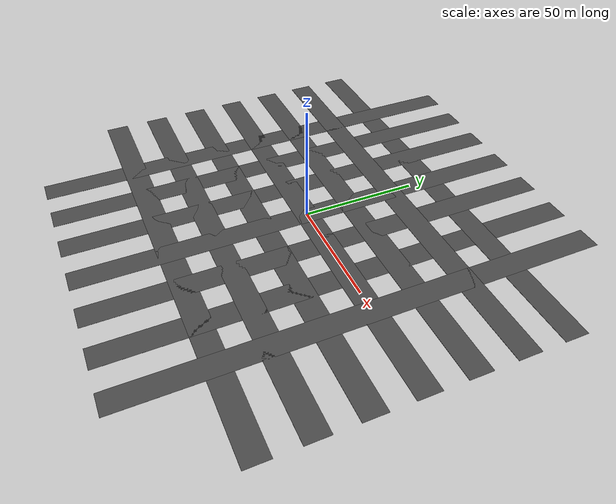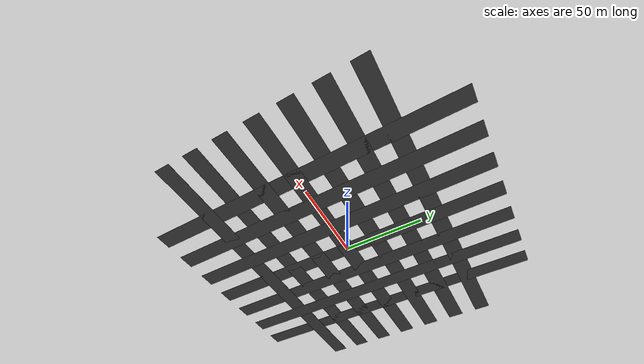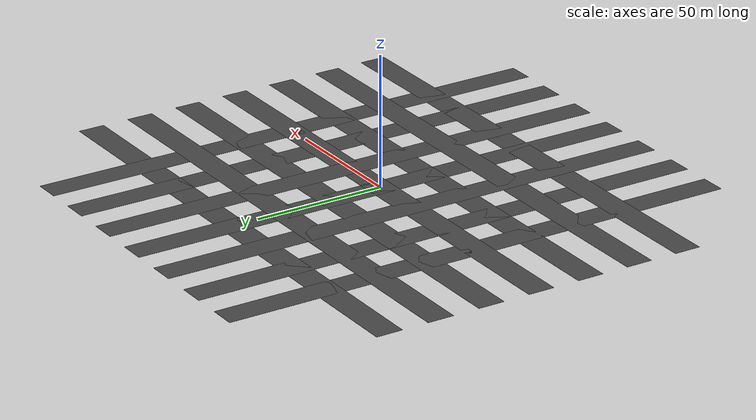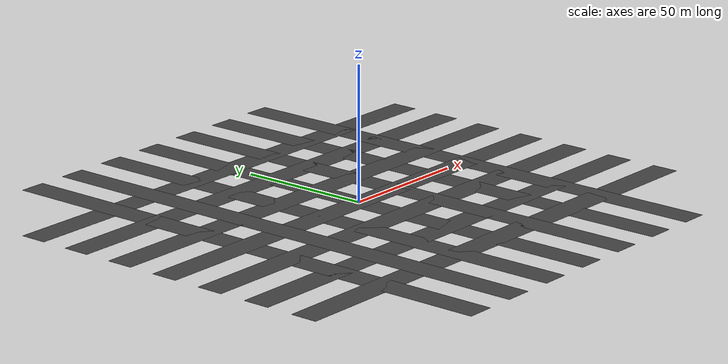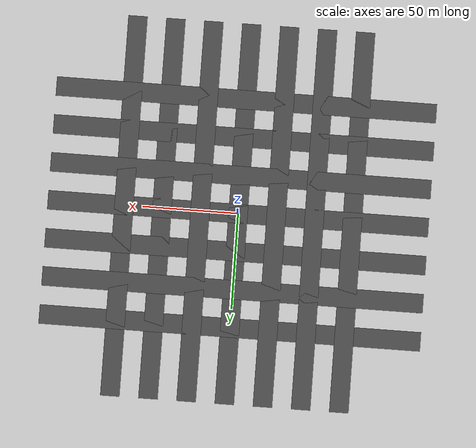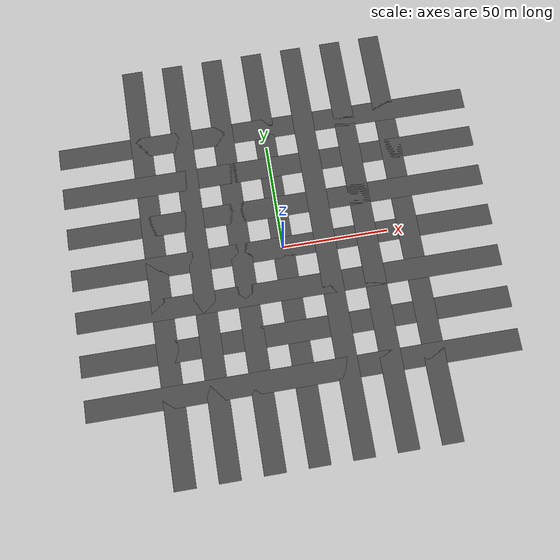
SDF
<?xml version="1.0" ?>
<sdf version="1.5">
  <model name="asphalt_plane">
    <static>true</static>
    <link name="r0">
      <pose frame=''>0 0 0 0 -0 0</pose>
      <collision name="collision">
        <geometry>
          <box>
            <size>10 200 .1</size>
          </box>
        </geometry>
      </collision>
      <visual name="visual">
        <cast_shadows>false</cast_shadows>
        <geometry>
          <box>
            <size>10 200 .1</size>
          </box>
        </geometry>
        <material>
          <script>
            <uri>model://asphalt_plane/materials/scripts</uri>
            <uri>model://asphalt_plane/materials/textures</uri>
            <name>vrc/asphalt</name>
          </script>
        </material>
      </visual>
    </link>
    <link name="r1">
      <pose frame=''>20 0 0 0 -0 0</pose>
      <collision name="collision">
        <geometry>
          <box>
            <size>10 200 .1</size>
          </box>
        </geometry>
      </collision>
      <visual name="visual">
        <cast_shadows>false</cast_shadows>
        <geometry>
          <box>
            <size>10 200 .1</size>
          </box>
        </geometry>
        <material>
          <script>
            <uri>model://asphalt_plane/materials/scripts</uri>
            <uri>model://asphalt_plane/materials/textures</uri>
            <name>vrc/asphalt</name>
          </script>
        </material>
      </visual>
    </link>
    <link name="r2">
      <pose frame=''>40 0 0 0 -0 0</pose>
      <collision name="collision">
        <geometry>
          <box>
            <size>10 200 .1</size>
          </box>
        </geometry>
      </collision>
      <visual name="visual">
        <cast_shadows>false</cast_shadows>
        <geometry>
          <box>
            <size>10 200 .1</size>
          </box>
        </geometry>
        <material>
          <script>
            <uri>model://asphalt_plane/materials/scripts</uri>
            <uri>model://asphalt_plane/materials/textures</uri>
            <name>vrc/asphalt</name>
          </script>
        </material>
      </visual>
    </link>
    <link name="r3">
      <pose frame=''>60 0 0 0 -0 0</pose>
      <collision name="collision">
        <geometry>
          <box>
            <size>10 200 .1</size>
          </box>
        </geometry>
      </collision>
      <visual name="visual">
        <cast_shadows>false</cast_shadows>
        <geometry>
          <box>
            <size>10 200 .1</size>
          </box>
        </geometry>
        <material>
          <script>
            <uri>model://asphalt_plane/materials/scripts</uri>
            <uri>model://asphalt_plane/materials/textures</uri>
            <name>vrc/asphalt</name>
          </script>
        </material>
      </visual>
    </link>
    <link name="r-1">
      <pose frame=''>-20 0 0 0 -0 0</pose>
      <collision name="collision">
        <geometry>
          <box>
            <size>10 200 .1</size>
          </box>
        </geometry>
      </collision>
      <visual name="visual">
        <cast_shadows>false</cast_shadows>
        <geometry>
          <box>
            <size>10 200 .1</size>
          </box>
        </geometry>
        <material>
          <script>
            <uri>model://asphalt_plane/materials/scripts</uri>
            <uri>model://asphalt_plane/materials/textures</uri>
            <name>vrc/asphalt</name>
          </script>
        </material>
      </visual>
    </link>
    <link name="r-2">
      <pose frame=''>-40 0 0 0 -0 0</pose>
      <collision name="collision">
        <geometry>
          <box>
            <size>10 200 .1</size>
          </box>
        </geometry>
      </collision>
      <visual name="visual">
        <cast_shadows>false</cast_shadows>
        <geometry>
          <box>
            <size>10 200 .1</size>
          </box>
        </geometry>
        <material>
          <script>
            <uri>model://asphalt_plane/materials/scripts</uri>
            <uri>model://asphalt_plane/materials/textures</uri>
            <name>vrc/asphalt</name>
          </script>
        </material>
      </visual>
    </link>
    <link name="r-3">
      <pose frame=''>-60 0 0 0 -0 0</pose>
      <collision name="collision">
        <geometry>
          <box>
            <size>10 200 .1</size>
          </box>
        </geometry>
      </collision>
      <visual name="visual">
        <cast_shadows>false</cast_shadows>
        <geometry>
          <box>
            <size>10 200 .1</size>
          </box>
        </geometry>
        <material>
          <script>
            <uri>model://asphalt_plane/materials/scripts</uri>
            <uri>model://asphalt_plane/materials/textures</uri>
            <name>vrc/asphalt</name>
          </script>
        </material>
      </visual>
    </link>
    <link name="c0">
      <pose frame=''>0 0 0 0 0 1.57</pose>
      <collision name="collision">
        <geometry>
          <box>
            <size>10 200 .1</size>
          </box>
        </geometry>
      </collision>
      <visual name="visual">
        <cast_shadows>false</cast_shadows>
        <geometry>
          <box>
            <size>10 200 .1</size>
          </box>
        </geometry>
        <material>
          <script>
            <uri>model://asphalt_plane/materials/scripts</uri>
            <uri>model://asphalt_plane/materials/textures</uri>
            <name>vrc/asphalt</name>
          </script>
        </material>
      </visual>
    </link>
    <link name="c1">
      <pose frame=''>0 20 0 0 0 1.57</pose>
      <collision name="collision">
        <geometry>
          <box>
            <size>10 200 .1</size>
          </box>
        </geometry>
      </collision>
      <visual name="visual">
        <cast_shadows>false</cast_shadows>
        <geometry>
          <box>
            <size>10 200 .1</size>
          </box>
        </geometry>
        <material>
          <script>
            <uri>model://asphalt_plane/materials/scripts</uri>
            <uri>model://asphalt_plane/materials/textures</uri>
            <name>vrc/asphalt</name>
          </script>
        </material>
      </visual>
    </link>
    <link name="c2">
      <pose frame=''>0 40 0 0 0 1.57</pose>
      <collision name="collision">
        <geometry>
          <box>
            <size>10 200 .1</size>
          </box>
        </geometry>
      </collision>
      <visual name="visual">
        <cast_shadows>false</cast_shadows>
        <geometry>
          <box>
            <size>10 200 .1</size>
          </box>
        </geometry>
        <material>
          <script>
            <uri>model://asphalt_plane/materials/scripts</uri>
            <uri>model://asphalt_plane/materials/textures</uri>
            <name>vrc/asphalt</name>
          </script>
        </material>
      </visual>
    </link>
    <link name="c3">
      <pose frame=''>0 60 0 0 0 1.57</pose>
      <collision name="collision">
        <geometry>
          <box>
            <size>10 200 .1</size>
          </box>
        </geometry>
      </collision>
      <visual name="visual">
        <cast_shadows>false</cast_shadows>
        <geometry>
          <box>
            <size>10 200 .1</size>
          </box>
        </geometry>
        <material>
          <script>
            <uri>model://asphalt_plane/materials/scripts</uri>
            <uri>model://asphalt_plane/materials/textures</uri>
            <name>vrc/asphalt</name>
          </script>
        </material>
      </visual>
    </link>
    <link name="c-1">
      <pose frame=''>0 -20 0 0 0 1.57</pose>
      <collision name="collision">
        <geometry>
          <box>
            <size>10 200 .1</size>
          </box>
        </geometry>
      </collision>
      <visual name="visual">
        <cast_shadows>false</cast_shadows>
        <geometry>
          <box>
            <size>10 200 .1</size>
          </box>
        </geometry>
        <material>
          <script>
            <uri>model://asphalt_plane/materials/scripts</uri>
            <uri>model://asphalt_plane/materials/textures</uri>
            <name>vrc/asphalt</name>
          </script>
        </material>
      </visual>
    </link>
    <link name="c-2">
      <pose frame=''>0 -40 0 0 0 1.57</pose>
      <collision name="collision">
        <geometry>
          <box>
            <size>10 200 .1</size>
          </box>
        </geometry>
      </collision>
      <visual name="visual">
        <cast_shadows>false</cast_shadows>
        <geometry>
          <box>
            <size>10 200 .1</size>
          </box>
        </geometry>
        <material>
          <script>
            <uri>model://asphalt_plane/materials/scripts</uri>
            <uri>model://asphalt_plane/materials/textures</uri>
            <name>vrc/asphalt</name>
          </script>
        </material>
      </visual>
    </link>
    <link name="c-3">
      <pose frame=''>0 -60 0 0 0 1.57</pose>
      <collision name="collision">
        <geometry>
          <box>
            <size>10 200 .1</size>
          </box>
        </geometry>
      </collision>
      <visual name="visual">
        <cast_shadows>false</cast_shadows>
        <geometry>
          <box>
            <size>10 200 .1</size>
          </box>
        </geometry>
        <material>
          <script>
            <uri>model://asphalt_plane/materials/scripts</uri>
            <uri>model://asphalt_plane/materials/textures</uri>
            <name>vrc/asphalt</name>
          </script>
        </material>
      </visual>
    </link>
  </model>
</sdf>
